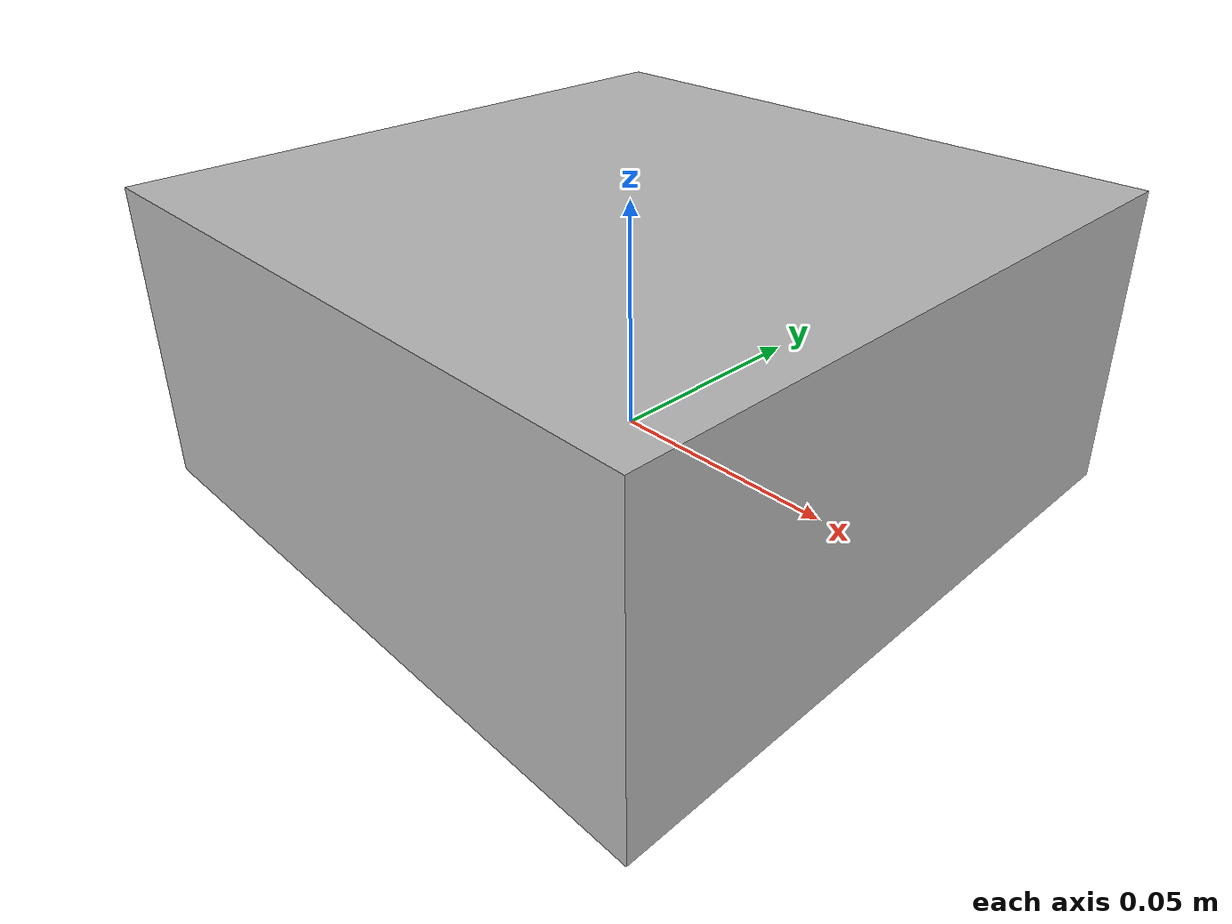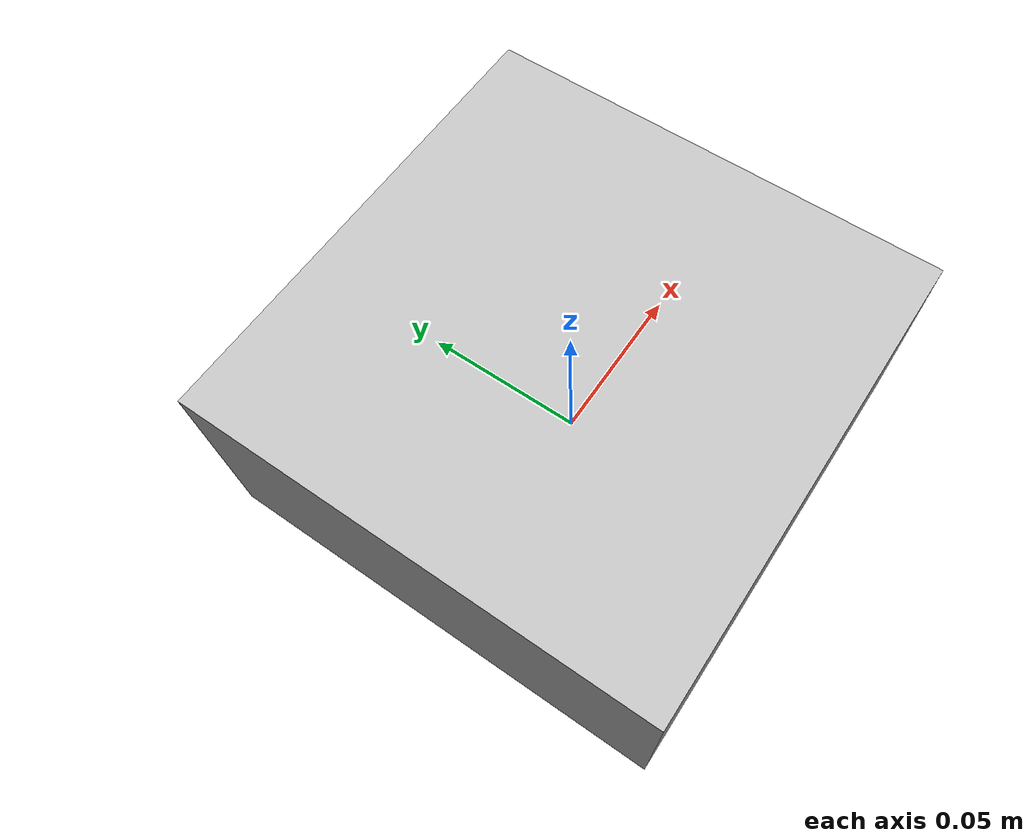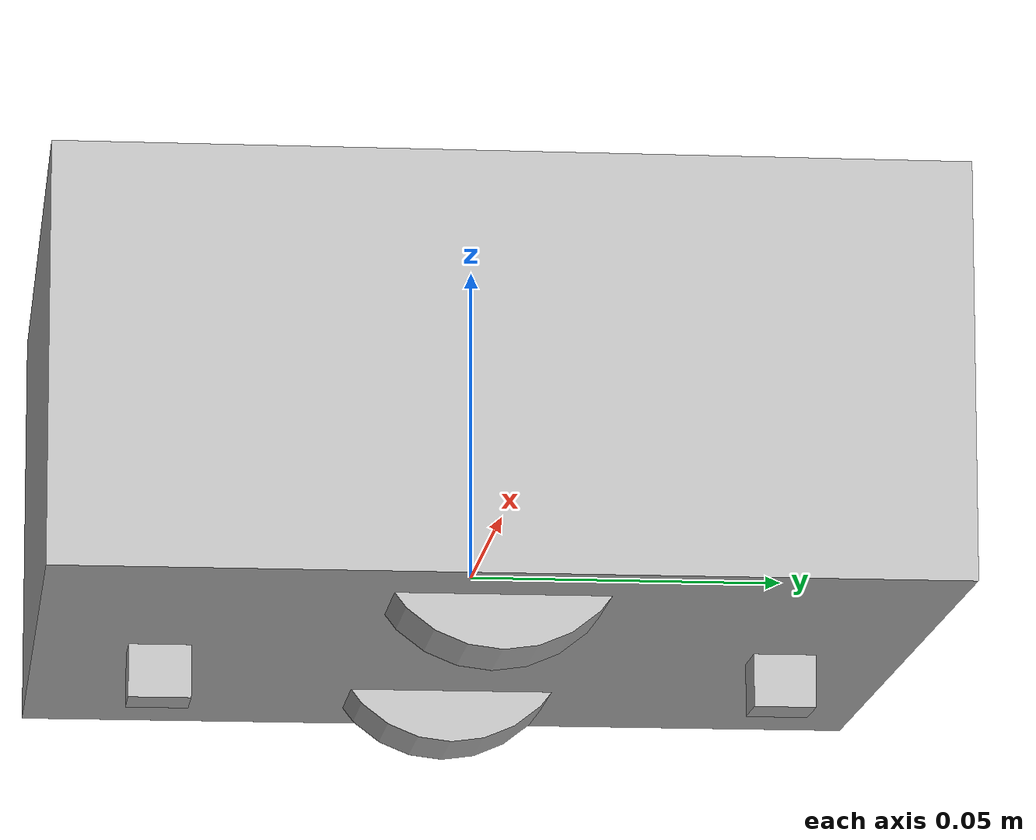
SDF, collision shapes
<sdf version='1.7'>
  <model name='alphabot2'>
    <link name='base_footprint'>
      <inertial>
         <pose>0 0 0.02 0 0 -1.5708</pose>
         <mass>0.54</mass>
         <inertia>
           <ixx>0.00080166</ixx>
           <ixy>0.00000000</ixy>
           <ixz>-0.00000019</ixz>
           <iyy>0.00076796</iyy>
           <iyz>0.00000200</iyz>
           <izz>0.00117596</izz>
         </inertia>
      </inertial>
      <collision name='base_footprint_fixed_joint_lump__base_link_collision'>
        <pose>0.001 0 0.02 0 -0 0</pose>
        <geometry>
          <box>
            <size>0.14 0.14 0.065</size>
          </box>
        </geometry>
      </collision>
      <collision name='base_footprint_fixed_joint_lump__caster_back_link_collision_1'>
        <pose>0 -0.05 -0.016 0 -0 0</pose>
        <geometry>
          <box>
            <size>0.01 0.01 0.01</size>
          </box>
        </geometry>
      </collision>
      <collision name='base_footprint_fixed_joint_lump__caster_front_link_collision_2'>
        <pose>0 0.05 -0.016 0 -0 0</pose>
        <geometry>
          <box>
            <size>0.01 0.01 0.01</size>
          </box>
        </geometry>
      </collision>
      <visual name='base_footprint_fixed_joint_lump__base_link_visual'>
        <pose>0 0 0 0 -0 0</pose>
        <geometry>
          <mesh>
            <scale>1 1 1</scale>
            <uri>model://ab2_description/meshes/dae/body.dae</uri>
          </mesh>
        </geometry>
      </visual>
    </link>

    <joint name='landing_joint' type='fixed'>
      <pose relative_to='base_footprint'>0 0 0.053 0 0 0</pose>
      <parent>base_footprint</parent>
      <child>landing_link</child>
    </joint>
    <link name='landing_link'/>

    <joint name='wheel_left_joint' type='revolute'>
      <pose relative_to='base_footprint'>-0.044 0 0 0 -0 0</pose>
      <parent>base_footprint</parent>
      <child>wheel_left_link</child>
      <axis>
        <xyz>1 0 0</xyz>
        <limit>
          <lower>-1e+16</lower>
          <upper>1e+16</upper>
        </limit>
        <dynamics>
          <spring_reference>0</spring_reference>
          <spring_stiffness>0</spring_stiffness>
        </dynamics>
      </axis>
    </joint>
    <link name='wheel_left_link'>
      <pose relative_to='wheel_left_joint'>0 0 0 0 -0 0</pose>
      <inertial>
        <pose>-0.000196 -0.000181 -7.5e-05 0 -0 0</pose>
        <mass>0.03</mass>
        <inertia>
          <ixx>6.44e-06</ixx>
          <ixy>0</ixy>
          <ixz>0</ixz>
          <iyy>4.07e-06</iyy>
          <iyz>0</iyz>
          <izz>4.07e-06</izz>
        </inertia>
      </inertial>
      <collision name='wheel_left_link_collision'>
        <pose>0 0 0 0 1.5708 0</pose>
        <geometry>
          <cylinder>
            <length>0.019</length>
            <radius>0.021</radius>
          </cylinder>
        </geometry>
      </collision>
      <visual name='wheel_left_link_visual'>
        <pose>0 0 0 0 -0 0</pose>
        <geometry>
          <mesh>
            <scale>1 1 1</scale>
            <uri>model://ab2_description/meshes/dae/wheel.dae</uri>
          </mesh>
        </geometry>
      </visual>
    </link>
    <joint name='wheel_right_joint' type='revolute'>
      <pose relative_to='base_footprint'>0.044 0 0 0 -0 0</pose>
      <parent>base_footprint</parent>
      <child>wheel_right_link</child>
      <axis>
        <xyz>1 0 0</xyz>
        <limit>
          <lower>-1e+16</lower>
          <upper>1e+16</upper>
        </limit>
        <dynamics>
          <spring_reference>0</spring_reference>
          <spring_stiffness>0</spring_stiffness>
        </dynamics>
      </axis>
    </joint>
    <link name='wheel_right_link'>
      <pose relative_to='wheel_right_joint'>0 0 0 0 -0 0</pose>
      <inertial>
        <pose>-0.000196 -0.000181 -7.5e-05 0 -0 0</pose>
        <mass>0.03</mass>
        <inertia>
          <ixx>6.44e-06</ixx>
          <ixy>0</ixy>
          <ixz>0</ixz>
          <iyy>4.07e-06</iyy>
          <iyz>0</iyz>
          <izz>4.07e-06</izz>
        </inertia>
      </inertial>
      <collision name='wheel_right_link_collision'>
        <pose>0 0 0 0 1.5708 0</pose>
        <geometry>
          <cylinder>
            <length>0.019</length>
            <radius>0.021</radius>
          </cylinder>
        </geometry>
      </collision>
      <visual name='wheel_right_link_visual'>
        <pose>0 0 0 3.14159 0.001593 3.14159</pose>
        <geometry>
          <mesh>
            <scale>1 1 1</scale>
            <uri>model://ab2_description/meshes/dae/wheel.dae</uri>
          </mesh>
        </geometry>
      </visual>
    </link>

    <plugin filename="gz-sim-diff-drive-system" name="gz::sim::systems::DiffDrive">
      <!-- wheels -->
      <left_joint>wheel_left_joint</left_joint>
      <right_joint>wheel_right_joint</right_joint>

      <!-- kinematics -->
      <wheel_separation>0.110</wheel_separation>
      <wheel_radius>0.021</wheel_radius>

      <!-- limits -->
      <max_linear_acceleration>1.0</max_linear_acceleration>

      <topic>cmd_vel</topic>
      <odom_topic>odom</odom_topic>
      <frame_id>odom</frame_id>
      <tf_topic>/tf</tf_topic>
      <odom_publisher_frequency>30</odom_publisher_frequency>
      <child_frame_id>base_footprint</child_frame_id>
    </plugin>

    <plugin filename="gz-sim-joint-state-publisher-system"
      name="gz::sim::systems::JointStatePublisher">
      <topic>joint_states</topic>
      <joint_name>wheel_left_joint</joint_name>
      <joint_name>wheel_right_joint</joint_name>
    </plugin>

  </model>
</sdf>
